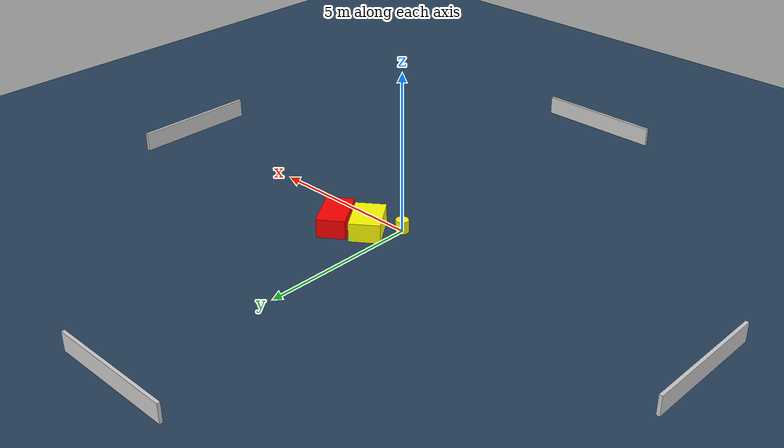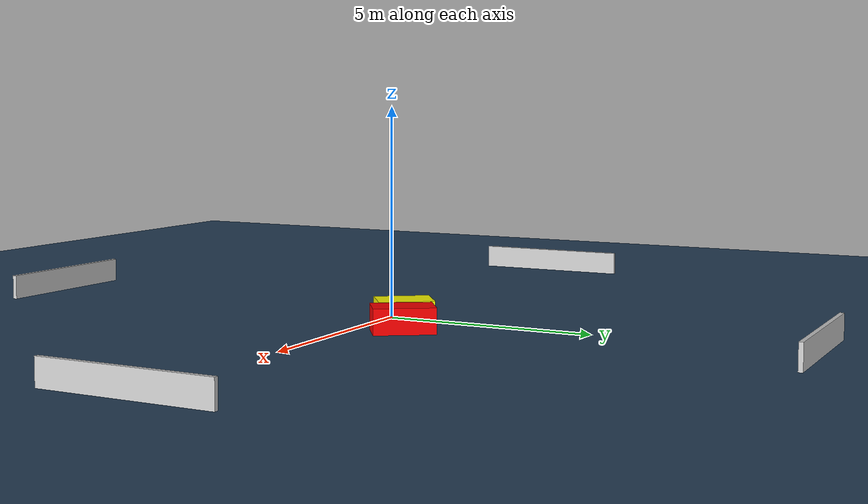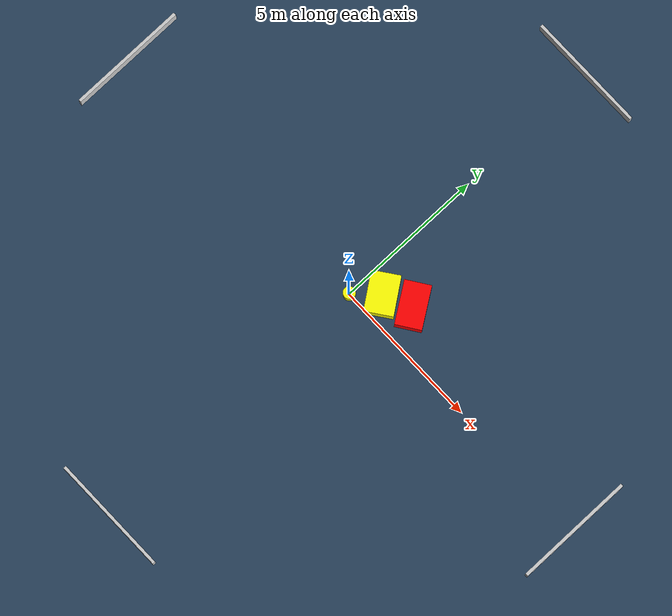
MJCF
<?xml version="1.0" ?>
<mujoco model="generated_environment">
  <option timestep="0.01" integrator="RK4" cone="elliptic"/>
  <default>
    <geom density="1"/>
  </default>
  <asset>
    <texture builtin="gradient" height="3072" name="skybox" rgb1="0.3 0.5 0.7" rgb2="0 0 0" type="skybox" width="512"/>
    <texture builtin="checker" height="300" name="groundplane" rgb1="0.2 0.3 0.4" rgb2="0.1 0.2 0.3" type="2d" width="300"/>
    <material name="groundplane" reflectance="0.2" texrepeat="5 5" texture="groundplane"/>
  </asset>
  <worldbody>
    <light dir="0 0 -1" directional="true" pos="0 0 1.5"/>
    <geom condim="3" friction="0.5 0.005 0.001" material="groundplane" name="floor" pos="0 0 0" size="0 0 0.05" type="plane"/>
    <body name="walls">
      <geom name="wall_1" condim="4" pos="-10.0 0.0 0.3" rgba="0.800000011920929 0.800000011920929 0.800000011920929 1.0" size="0.05 2.0 0.3" type="box"/>
      <geom name="wall_2" condim="4" pos="10.0 0.0 0.3" rgba="0.800000011920929 0.800000011920929 0.800000011920929 1.0" size="0.05 2.0 0.3" type="box"/>
      <geom name="wall_3" condim="4" pos="0.0 -10.0 0.3" rgba="0.800000011920929 0.800000011920929 0.800000011920929 1.0" size="2.0 0.05 0.3" type="box"/>
      <geom name="wall_4" condim="4" pos="0.0 10.0 0.3" rgba="0.800000011920929 0.800000011920929 0.800000011920929 1.0" size="2.0 0.05 0.3" type="box"/>
    </body>
    <body name="robot">
      <joint name="joint_x" type="slide" pos="0 0 0" axis="1 0 0"/>
      <joint name="joint_y" type="slide" pos="0 0 0" axis="0 1 0"/>
      <geom name="robot" type="cylinder" pos="0.0 0.0 0.2" size="0.2 0.2 0.0" mass="5.0" friction="1.0 0.005 0.0001" condim="4" rgba="1.0 1.0 0.0 1.0"/>
    </body>
    <body name="obstacle_1_movable">
      <geom name="obstacle_1_movable" condim="4" pos="0.7266424950230915 0.7086629260665079 0.3" euler="0 0 305.9616248385135" friction="0.0 0.005 0.001" rgba="1.0 1.0 0.0 1.0" size="0.6507877555551609 0.47364974286955835 0.3" type="box" mass="0.1"/>
      <joint type="free"/>
    </body>
    <body name="obstacle_2_static">
      <geom name="obstacle_2_static" condim="4" pos="1.629579992357 1.1504865357827518 0.3" euler="0 0 304.1461767798851" friction="0.0 0.005 0.001" rgba="1.0 0.0 0.0 1.0" size="0.7123144689264396 0.4348243121907005 0.3" type="box"/>
    </body>
  </worldbody>
  <actuator>
    <motor name="actuator_x" joint="joint_x" gear="1" ctrlrange="-1 1"/>
    <motor name="actuator_y" joint="joint_y" gear="1" ctrlrange="-1 1"/>
  </actuator>
</mujoco>
